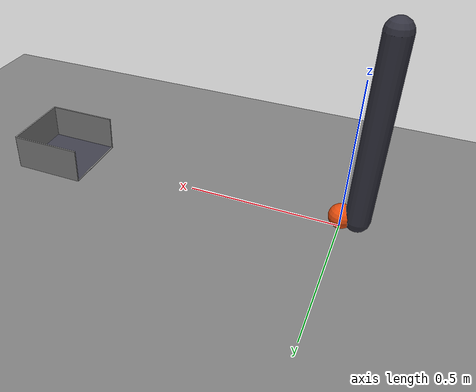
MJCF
<mujoco model="pendulum_rolls_a_ball_into_a_cup">
  <compiler angle="radian"/>
  <option timestep="0.002"/>
  <worldbody>
    <geom name="floor" type="plane" size="4 4 0.1" friction="0.6 0.001 0.0001"/>
    <body name="ball" pos="0 0 0.04">
      <freejoint/>
      <geom name="ball" type="sphere" pos="0 0 0" size="0.04" mass="0.1" condim="6" friction="0.6 0.001 0.0001" solref="0.01 1" rgba="0.9 0.3 0.05 1"/>
    </body>
    <body name="pivot">
    </body>
    <body name="pendulum tip">
    </body>
    <body name="pendulum" pos="-0.05 0 0.642">
      <joint name="swing" type="hinge" pos="0 0 0" axis="0 1 0" damping="0.015"/>
      <geom name="pendulum" type="capsule" size="0.04" fromto="0 0 0 0 0 -0.6" mass="0.8" solref="0.01 1" rgba="0.2 0.2 0.25 1"/>
    </body>
    <body name="cup">
      <geom name="cup_base" type="box" pos="1 0 0.001" size="0.12 0.12 0.001" friction="0.9 0.02 0.006" solref="0.01 1" rgba="0.25 0.25 0.3 1"/>
      <geom name="cup_near_wall" type="box" pos="0.88 0 0.001" size="0.0025 0.12 0.001" solref="0.01 1"/>
      <geom name="cup_far_wall" type="box" pos="1.12 0 0.06" size="0.0025 0.12 0.06" solref="0.01 1"/>
      <geom name="cup_left_wall" type="box" pos="1 0.12 0.06" size="0.12 0.0025 0.06" solref="0.01 1"/>
      <geom name="cup_right_wall" type="box" pos="1 -0.12 0.06" size="0.12 0.0025 0.06" solref="0.01 1"/>
    </body>
  </worldbody>
  <keyframe>
    <key name="start" qpos="0 0 0.04 1 0 0 0 0.383972" qvel="0 0 0 0 0 0 0"/>
  </keyframe>
</mujoco>
